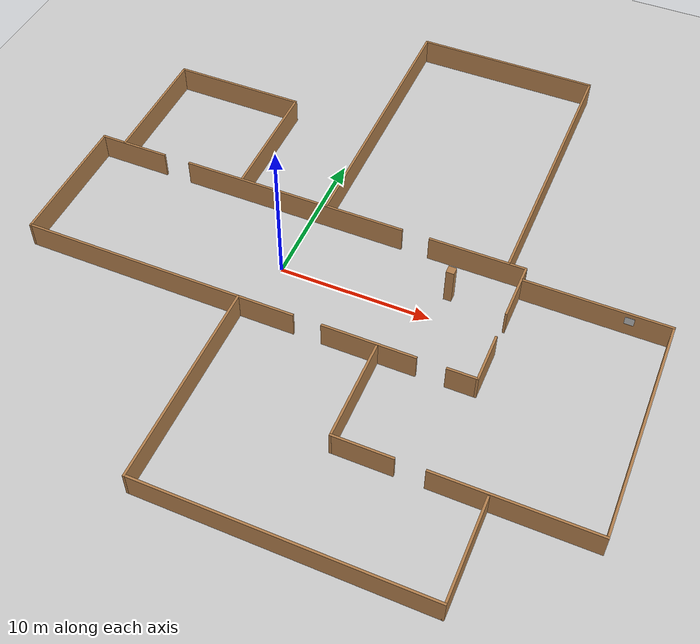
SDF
<sdf version="1.7">
 <world name="default">
  <model name="ground_plane">
   <static>1</static>
   <link name="link">
    <collision name="collision">
     <geometry><plane><normal>0 0 1</normal><size>25 25</size></plane></geometry>
     <surface><friction><ode><mu>100</mu><mu2>50</mu2></ode></friction></surface>
    </collision>
    <visual name="visual">
     <cast_shadows>0</cast_shadows>
     <geometry><plane><normal>0 0 1</normal><size>25 25</size></plane></geometry>
     <material>
      <script><uri>file://media/materials/scripts/gazebo.material</uri><name>Gazebo/Grey</name></script>
     </material>
    </visual>
   </link>
   <link name="startflag">
    <pose>0 0 0.115 0 -0 0</pose>
    <inertial>
     <mass>0.39</mass>
     <inertia><ixx>0.00058</ixx><ixy>0</ixy><ixz>0</ixz><iyy>0.00058</iyy><iyz>0</iyz><izz>0.00019</izz></inertia>
    </inertial>
    <collision name="collision"><geometry><box><size>1 1 0.01</size></box></geometry></collision>
    <visual name="visual">
     <geometry><box><size>1 1 0.01</size></box></geometry>
     <material>
      <script>
       <uri>model://apriltag/materials/scripts</uri>
       <uri>model://apriltag/materials/textures</uri>
       <name>startflag/Diffuse</name>
      </script>
     </material>
    </visual>
   </link>
  </model>
  <model name="unit_box_0_clone_3">
   <pose>10.4918 2.09211 1.29125 -0 2e-06 -0.000157</pose>
   <link name="link">
    <inertial>
     <mass>1</mass>
     <inertia>
      <ixx>0.166667</ixx>
      <ixy>0</ixy>
      <ixz>0</ixz>
      <iyy>0.166667</iyy>
      <iyz>0</iyz>
      <izz>0.166667</izz>
     </inertia>
    </inertial>
    <collision name="collision"><geometry><box><size>0.52404 0.528614 2.5825</size></box></geometry></collision>
    <visual name="visual">
     <geometry><box><size>0.52404 0.528614 2.5825</size></box></geometry>
     <material>
      <script><uri>file://media/materials/scripts/gazebo.material</uri><name>Gazebo/Wood</name></script>
     </material>
    </visual>
   </link>
   <static>0</static>
  </model>
  <model name="static_apriltag_5">
   <link name="link">
    <pose>0 0 0 -1.57 1.57 -0</pose>
    <inertial>
     <mass>0.39</mass>
     <inertia><ixx>0.00058</ixx><ixy>0</ixy><ixz>0</ixz><iyy>0.00058</iyy><iyz>0</iyz><izz>0.00019</izz></inertia>
    </inertial>
    <collision name="collision"><geometry><box><size>0.6 0.6 0.01</size></box></geometry></collision>
    <visual name="visual">
     <geometry><box><size>0.6 0.6 0.01</size></box></geometry>
     <material>
      <script>
       <uri>model://apriltag/materials/scripts</uri>
       <uri>model://apriltag/materials/textures</uri>
       <name>apriltag/Diffuse5</name>
      </script>
     </material>
    </visual>
    <gravity>0</gravity>
   </link>
   <pose>21.3245 3.67103 1.2 0 -0 0</pose>
   <static>0</static>
   <pose>5.04082 3.71574 0 0 -0 0</pose>
  </model>
  <model name="house4">
   <pose>4.1908 2.60197 0 0 -0 0</pose>
   <link name="Wall_0">
    <collision name="Wall_0_Collision">
     <geometry><box><size>9.15 0.15 1.8</size></box></geometry>
     <pose>0 0 0.9 0 -0 0</pose>
    </collision>
    <visual name="Wall_0_Visual">
     <pose>0 0 0.9 0 -0 0</pose>
     <geometry><box><size>9.15 0.15 1.8</size></box></geometry>
     <material>
      <script><uri>file://media/materials/scripts/gazebo.material</uri><name>Gazebo/Wood</name></script>
      <ambient>1 1 1 1</ambient>
     </material>
     <meta><layer>0</layer></meta>
    </visual>
    <pose>-19.71 -2.4279 0 0 -0 -1.5708</pose>
   </link>
   <link name="Wall_1">
    <pose>-4.71 -6.9279 0 0 -0 0</pose>
    <visual name="Wall_1_Visual_0">
     <pose>-5.83035 0 0.9 0 -0 0</pose>
     <geometry><box><size>18.4893 0.15 1.8</size></box></geometry>
     <material>
      <script><uri>file://media/materials/scripts/gazebo.material</uri><name>Gazebo/Wood</name></script>
      <ambient>1 1 1 1</ambient>
     </material>
     <meta><layer>0</layer></meta>
    </visual>
    <collision name="Wall_1_Collision_0">
     <geometry><box><size>18.4893 0.15 1.8</size></box></geometry>
     <pose>-5.83035 0 0.9 0 -0 0</pose>
    </collision>
    <visual name="Wall_1_Visual_1">
     <pose>8.25278 0 0.9 0 -0 0</pose>
     <geometry><box><size>6.07697 0.15 1.8</size></box></geometry>
     <material>
      <script><uri>file://media/materials/scripts/gazebo.material</uri><name>Gazebo/Wood</name></script>
      <ambient>1 1 1 1</ambient>
     </material>
     <meta><layer>0</layer></meta>
    </visual>
    <collision name="Wall_1_Collision_1">
     <geometry><box><size>6.07697 0.15 1.8</size></box></geometry>
     <pose>8.25278 0 0.9 0 -0 0</pose>
    </collision>
    <visual name="Wall_1_Visual_2">
     <pose>14.0831 0 0.9 0 -0 0</pose>
     <geometry><box><size>1.98374 0.15 1.8</size></box></geometry>
     <material>
      <script><uri>file://media/materials/scripts/gazebo.material</uri><name>Gazebo/Wood</name></script>
      <ambient>1 1 1 1</ambient>
     </material>
     <meta><layer>0</layer></meta>
    </visual>
    <collision name="Wall_1_Collision_2">
     <geometry><box><size>1.98374 0.15 1.8</size></box></geometry>
     <pose>14.0831 0 0.9 0 -0 0</pose>
    </collision>
   </link>
   <link name="Wall_11">
    <collision name="Wall_11_Collision">
     <geometry><box><size>18.5 0.15 1.8</size></box></geometry>
     <pose>0 0 0.9 0 -0 0</pose>
    </collision>
    <visual name="Wall_11_Visual">
     <pose>0 0 0.9 0 -0 0</pose>
     <geometry><box><size>18.5 0.15 1.8</size></box></geometry>
     <material>
      <script><uri>file://media/materials/scripts/gazebo.material</uri><name>Gazebo/Wood</name></script>
      <ambient>1 1 1 1</ambient>
     </material>
     <meta><layer>0</layer></meta>
    </visual>
    <pose>-3.167 11.2531 0 0 -0 1.5708</pose>
   </link>
   <link name="Wall_12">
    <collision name="Wall_12_Collision">
     <geometry><box><size>12.5 0.15 1.8</size></box></geometry>
     <pose>0 0 0.9 0 -0 0</pose>
    </collision>
    <visual name="Wall_12_Visual">
     <pose>0 0 0.9 0 -0 0</pose>
     <geometry><box><size>12.5 0.15 1.8</size></box></geometry>
     <material>
      <script><uri>file://media/materials/scripts/gazebo.material</uri><name>Gazebo/Wood</name></script>
      <ambient>1 1 1 1</ambient>
     </material>
     <meta><layer>0</layer></meta>
    </visual>
    <pose>3.008 20.4281 0 0 -0 0</pose>
   </link>
   <link name="Wall_13">
    <collision name="Wall_13_Collision">
     <geometry><box><size>18.5 0.15 1.8</size></box></geometry>
     <pose>0 0 0.9 0 -0 0</pose>
    </collision>
    <visual name="Wall_13_Visual">
     <pose>0 0 0.9 0 -0 0</pose>
     <geometry><box><size>18.5 0.15 1.8</size></box></geometry>
     <material>
      <script><uri>file://media/materials/scripts/gazebo.material</uri><name>Gazebo/Wood</name></script>
      <ambient>1 1 1 1</ambient>
     </material>
     <meta><layer>0</layer></meta>
    </visual>
    <pose>9.183 11.2531 0 0 -0 -1.5708</pose>
   </link>
   <link name="Wall_15">
    <collision name="Wall_15_Collision">
     <geometry><box><size>9.5 0.15 1.8</size></box></geometry>
     <pose>0 0 0.9 0 -0 0</pose>
    </collision>
    <visual name="Wall_15_Visual">
     <pose>0 0 0.9 0 -0 0</pose>
     <geometry><box><size>9.5 0.15 1.8</size></box></geometry>
     <material>
      <script><uri>file://media/materials/scripts/gazebo.material</uri><name>Gazebo/Wood</name></script>
      <ambient>1 1 1 1</ambient>
     </material>
     <meta><layer>0</layer></meta>
    </visual>
    <pose>15.035 1.1501 0 0 -0 0</pose>
   </link>
   <link name="Wall_18">
    <collision name="Wall_18_Collision">
     <geometry><box><size>15 0.15 1.8</size></box></geometry>
     <pose>0 0 0.9 0 -0 0</pose>
    </collision>
    <visual name="Wall_18_Visual">
     <pose>0 0 0.9 0 -0 0</pose>
     <geometry><box><size>15 0.15 1.8</size></box></geometry>
     <material>
      <script><uri>file://media/materials/scripts/gazebo.material</uri><name>Gazebo/Wood</name></script>
      <ambient>1 1 1 1</ambient>
     </material>
     <meta><layer>0</layer></meta>
    </visual>
    <pose>19.71 -6.2749 0 0 -0 -1.5708</pose>
   </link>
   <link name="Wall_19">
    <pose>11.91 -13.6999 0 0 -0 3.14159</pose>
    <visual name="Wall_19_Visual_0">
     <pose>-2.84178 0 0.9 0 -0 0</pose>
     <geometry><box><size>10.0664 0.15 1.8</size></box></geometry>
     <material>
      <script><uri>file://media/materials/scripts/gazebo.material</uri><name>Gazebo/Wood</name></script>
      <ambient>1 1 1 1</ambient>
     </material>
     <meta><layer>0</layer></meta>
    </visual>
    <collision name="Wall_19_Collision_0">
     <geometry><box><size>10.0664 0.15 1.8</size></box></geometry>
     <pose>-2.84178 0 0.9 0 -0 0</pose>
    </collision>
    <visual name="Wall_19_Visual_1">
     <pose>5.93323 0 0.9 0 -0 0</pose>
     <geometry><box><size>3.88355 0.15 1.8</size></box></geometry>
     <material>
      <script><uri>file://media/materials/scripts/gazebo.material</uri><name>Gazebo/Wood</name></script>
      <ambient>1 1 1 1</ambient>
     </material>
     <meta><layer>0</layer></meta>
    </visual>
    <collision name="Wall_19_Collision_1">
     <geometry><box><size>3.88355 0.15 1.8</size></box></geometry>
     <pose>5.93323 0 0.9 0 -0 0</pose>
    </collision>
   </link>
   <link name="Wall_2">
    <pose>10.29 -2.4279 0 0 -0 1.5708</pose>
    <visual name="Wall_2_Visual_0">
     <pose>-2.88083 0 0.9 0 -0 0</pose>
     <geometry><box><size>3.38835 0.15 1.8</size></box></geometry>
     <material>
      <script><uri>file://media/materials/scripts/gazebo.material</uri><name>Gazebo/Wood</name></script>
      <ambient>1 1 1 1</ambient>
     </material>
     <meta><layer>0</layer></meta>
    </visual>
    <collision name="Wall_2_Collision_0">
     <geometry><box><size>3.38835 0.15 1.8</size></box></geometry>
     <pose>-2.88083 0 0.9 0 -0 0</pose>
    </collision>
    <visual name="Wall_2_Visual_1">
     <pose>2.59417 0 0.9 0 -0 0</pose>
     <geometry><box><size>3.96165 0.15 1.8</size></box></geometry>
     <material>
      <script><uri>file://media/materials/scripts/gazebo.material</uri><name>Gazebo/Wood</name></script>
      <ambient>1 1 1 1</ambient>
     </material>
     <meta><layer>0</layer></meta>
    </visual>
    <collision name="Wall_2_Collision_1">
     <geometry><box><size>3.96165 0.15 1.8</size></box></geometry>
     <pose>2.59417 0 0.9 0 -0 0</pose>
    </collision>
   </link>
   <link name="Wall_20">
    <collision name="Wall_20_Collision">
     <geometry><box><size>6.75 0.15 1.8</size></box></geometry>
     <pose>0 0 0.9 0 -0 0</pose>
    </collision>
    <visual name="Wall_20_Visual">
     <pose>0 0 0.9 0 -0 0</pose>
     <geometry><box><size>6.75 0.15 1.8</size></box></geometry>
     <material>
      <script><uri>file://media/materials/scripts/gazebo.material</uri><name>Gazebo/Wood</name></script>
      <ambient>1 1 1 1</ambient>
     </material>
     <meta><layer>0</layer></meta>
    </visual>
    <pose>4.11 -10.3999 0 0 -0 1.5708</pose>
   </link>
   <link name="Wall_24">
    <collision name="Wall_24_Collision">
     <geometry><box><size>13.6364 0.15 1.8</size></box></geometry>
     <pose>0 0 0.9 0 -0 0</pose>
    </collision>
    <visual name="Wall_24_Visual">
     <pose>0 0 0.9 0 -0 0</pose>
     <geometry><box><size>13.6364 0.15 1.8</size></box></geometry>
     <material>
      <script><uri>file://media/materials/scripts/gazebo.material</uri><name>Gazebo/Wood</name></script>
      <ambient>1 1 1 1</ambient>
     </material>
     <meta><layer>0</layer></meta>
    </visual>
    <pose>-4.972 -13.6849 0 0 -0 -1.5708</pose>
   </link>
   <link name="Wall_25">
    <collision name="Wall_25_Collision">
     <geometry><box><size>18.412 0.15 1.8</size></box></geometry>
     <pose>0 0 0.9 0 -0 0</pose>
    </collision>
    <visual name="Wall_25_Visual">
     <pose>0 0 0.9 0 -0 0</pose>
     <geometry><box><size>18.412 0.15 1.8</size></box></geometry>
     <material>
      <script><uri>file://media/materials/scripts/gazebo.material</uri><name>Gazebo/Wood</name></script>
      <ambient>1 1 1 1</ambient>
     </material>
     <meta><layer>0</layer></meta>
    </visual>
    <pose>4.159 -20.4279 0 0 -0 0</pose>
   </link>
   <link name="Wall_26">
    <collision name="Wall_26_Collision">
     <geometry><box><size>6.672 0.15 1.8</size></box></geometry>
     <pose>0 0 0.9 0 -0 0</pose>
    </collision>
    <visual name="Wall_26_Visual">
     <pose>0 0 0.9 0 -0 0</pose>
     <geometry><box><size>6.672 0.15 1.8</size></box></geometry>
     <material>
      <script><uri>file://media/materials/scripts/gazebo.material</uri><name>Gazebo/Wood</name></script>
      <ambient>1 1 1 1</ambient>
     </material>
     <meta><layer>0</layer></meta>
    </visual>
    <pose>13.29 -17.1669 0 0 -0 1.5708</pose>
   </link>
   <link name="Wall_3">
    <pose>-4.71 2.0721 0 0 -0 3.14159</pose>
    <visual name="Wall_3_Visual_0">
     <pose>-11.8572 0 0.9 0 -0 0</pose>
     <geometry><box><size>6.43566 0.15 1.8</size></box></geometry>
     <material>
      <script><uri>file://media/materials/scripts/gazebo.material</uri><name>Gazebo/Wood</name></script>
      <ambient>1 1 1 1</ambient>
     </material>
     <meta><layer>0</layer></meta>
    </visual>
    <collision name="Wall_3_Collision_0">
     <geometry><box><size>6.43566 0.15 1.8</size></box></geometry>
     <pose>-11.8572 0 0.9 0 -0 0</pose>
    </collision>
    <visual name="Wall_3_Visual_1">
     <pose>0.825947 0 0.9 0 -0 0</pose>
     <geometry><box><size>15.3306 0.15 1.8</size></box></geometry>
     <material>
      <script><uri>file://media/materials/scripts/gazebo.material</uri><name>Gazebo/Wood</name></script>
      <ambient>1 1 1 1</ambient>
     </material>
     <meta><layer>0</layer></meta>
    </visual>
    <collision name="Wall_3_Collision_1">
     <geometry><box><size>15.3306 0.15 1.8</size></box></geometry>
     <pose>0.825947 0 0.9 0 -0 0</pose>
    </collision>
    <visual name="Wall_3_Visual_2">
     <pose>12.6831 0 0.9 0 -0 0</pose>
     <geometry><box><size>4.78376 0.15 1.8</size></box></geometry>
     <material>
      <script><uri>file://media/materials/scripts/gazebo.material</uri><name>Gazebo/Wood</name></script>
      <ambient>1 1 1 1</ambient>
     </material>
     <meta><layer>0</layer></meta>
    </visual>
    <collision name="Wall_3_Collision_2">
     <geometry><box><size>4.78376 0.15 1.8</size></box></geometry>
     <pose>12.6831 0 0.9 0 -0 0</pose>
    </collision>
   </link>
   <link name="Wall_5">
    <collision name="Wall_5_Collision">
     <geometry><box><size>8.5 0.15 1.8</size></box></geometry>
     <pose>0 0 0.9 0 -0 0</pose>
    </collision>
    <visual name="Wall_5_Visual">
     <pose>0 0 0.9 0 -0 0</pose>
     <geometry><box><size>8.5 0.15 1.8</size></box></geometry>
     <material>
      <script><uri>file://media/materials/scripts/gazebo.material</uri><name>Gazebo/Wood</name></script>
      <ambient>1 1 1 1</ambient>
     </material>
     <meta><layer>0</layer></meta>
    </visual>
    <pose>-18.109 6.2961 0 0 -0 1.5708</pose>
   </link>
   <link name="Wall_6">
    <collision name="Wall_6_Collision">
     <geometry><box><size>9 0.15 1.8</size></box></geometry>
     <pose>0 0 0.9 0 -0 0</pose>
    </collision>
    <visual name="Wall_6_Visual">
     <pose>0 0 0.9 0 -0 0</pose>
     <geometry><box><size>9 0.15 1.8</size></box></geometry>
     <material>
      <script><uri>file://media/materials/scripts/gazebo.material</uri><name>Gazebo/Wood</name></script>
      <ambient>1 1 1 1</ambient>
     </material>
     <meta><layer>0</layer></meta>
    </visual>
    <pose>-13.684 10.4711 0 0 -0 0</pose>
   </link>
   <link name="Wall_7">
    <collision name="Wall_7_Collision">
     <geometry><box><size>8.5 0.15 1.8</size></box></geometry>
     <pose>0 0 0.9 0 -0 0</pose>
    </collision>
    <visual name="Wall_7_Visual">
     <pose>0 0 0.9 0 -0 0</pose>
     <geometry><box><size>8.5 0.15 1.8</size></box></geometry>
     <material>
      <script><uri>file://media/materials/scripts/gazebo.material</uri><name>Gazebo/Wood</name></script>
      <ambient>1 1 1 1</ambient>
     </material>
     <meta><layer>0</layer></meta>
    </visual>
    <pose>-9.259 6.2961 0 0 -0 -1.5708</pose>
   </link>
   <static>1</static>
  </model>
 </world>
</sdf>
